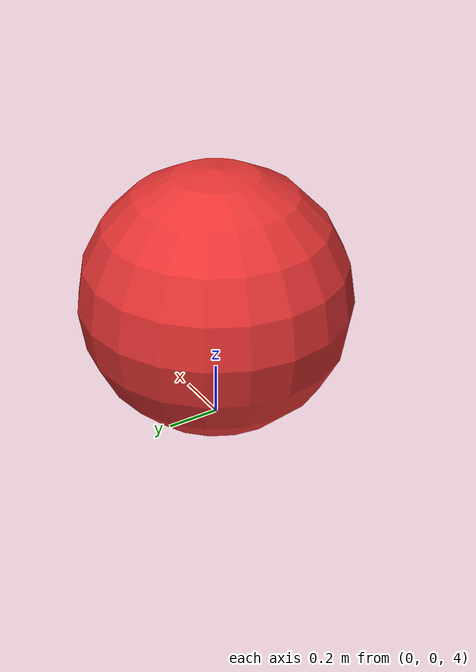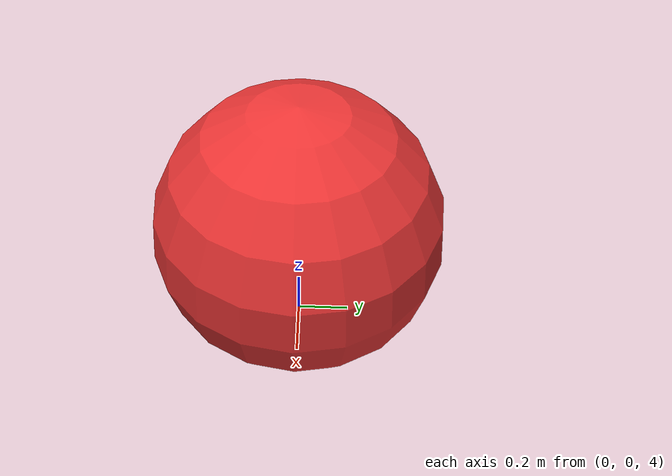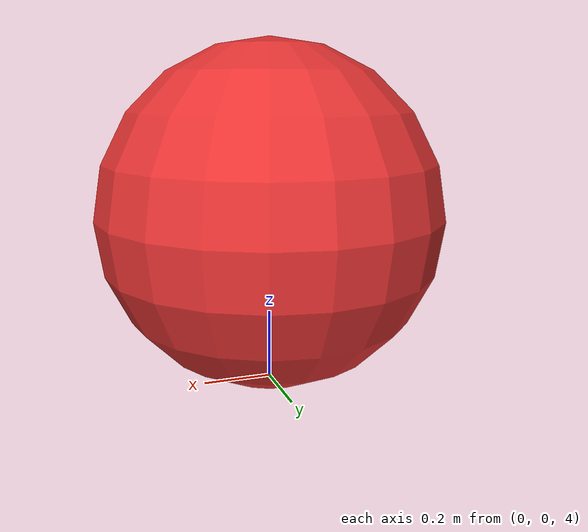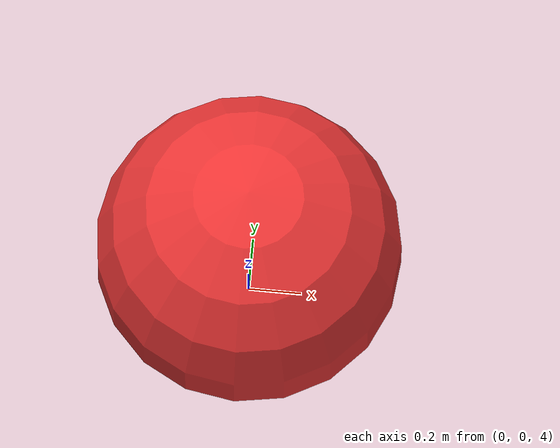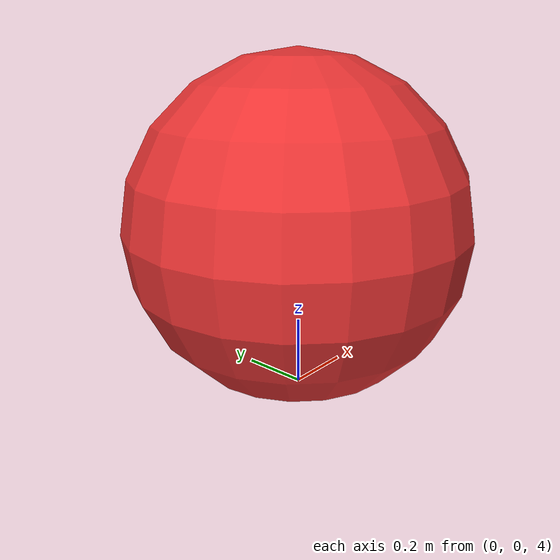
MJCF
<mujoco>
  <option timestep="0.01"/>

  <worldbody>
    <!-- 地面 -->
    <geom name="ground" type="plane" size="10 10 0.1" pos="0 0 0" rgba="0.8 0.9 0.8 1"/>

    <!-- 小球 -->
    <body name="ball" pos="0 0 4.5">
      <freejoint/>
      <geom name="ball_geom" type="sphere" size="0.5" rgba="0.9 0.2 0.2 1" mass="1"/>
    </body>
  </worldbody>

  <!-- 重力设置 -->
  <option gravity="0 0 -9.81"/>
</mujoco>
